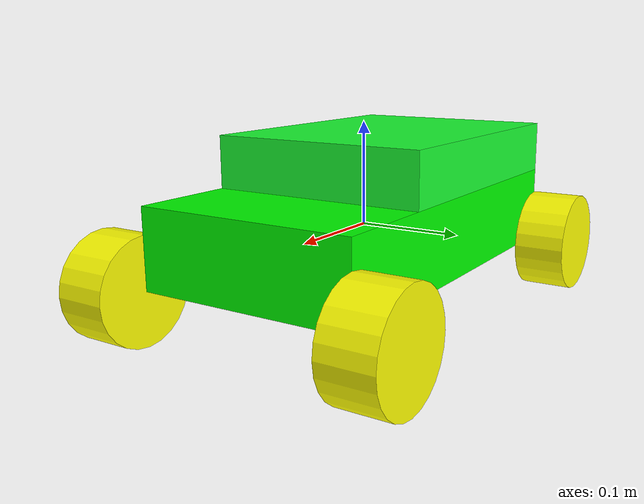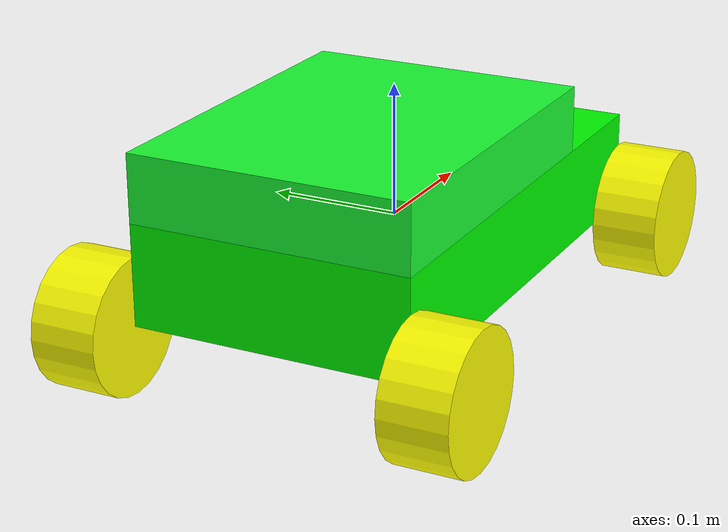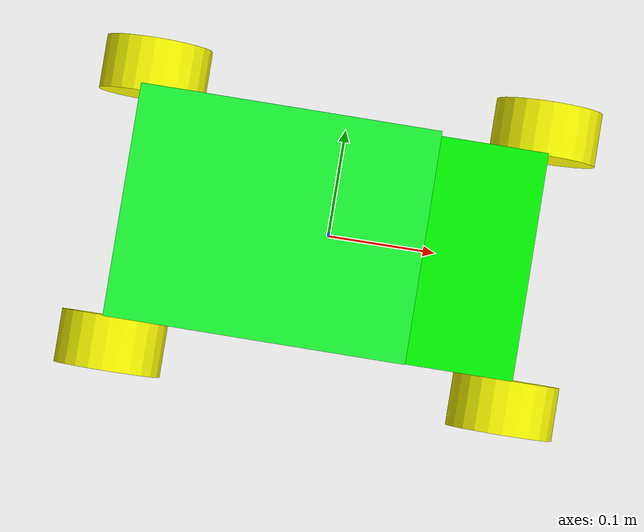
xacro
<?xml version="1.0"?>
<robot name="car" xmlns:xacro="http://ros.org/wiki/xacro">

  <!-- ===== Global Parameters ===== -->
  <xacro:property name="pi" value="3.1415926535897931" />
  <xacro:property name="car_length" value="0.3762" />             <!-- x axis  -->
  <xacro:property name="car_width" value="0.2124" />              <!-- y axis  -->
  <xacro:property name="car_height" value="0.0762" />              <!-- z axis  -->
  <xacro:property name="car_mass" value="0.7" />
  <xacro:property name="wheel_radius" value="0.0508" />
  <xacro:property name="wheel_length" value="0.0508" />
  <xacro:property name="wheel_mass" value="0.1" />

  <xacro:property name="capota_car_length" value="0.2746" />      <!-- x axis  -->
  <xacro:property name="capota_car_width" value="0.2124" />       <!-- y axis  -->
  <xacro:property name="capota_car_height" value="0.0508" />      <!-- z axis  -->
  <xacro:property name="capota_car_mass" value="0.3" />

  <!-- Materials -->
  <material name="green">
    <color rgba="0 1 0 1" />
  </material>
  <material name="light_green">
    <color rgba="0.1 1 0.2 1" />
  </material>
  <material name="yellow">
    <color rgba="1 1 0 1" />
  </material>

  <gazebo>
    <plugin name="gazebo_ros_control" filename="libgazebo_ros_control.so">
      <robotNamespace>/car</robotNamespace>
      <robotSimType>gazebo_ros_control/DefaultRobotHWSim</robotSimType>
    </plugin>
  </gazebo>

  <!-- Base Link -->
  <link name="dummy"> </link>
  <joint name="dummy_joint" type="fixed">
    <parent link="dummy" />
    <child link="base_link" />
  </joint>
  <link name="base_link">
    <visual>
      <geometry>
        <box size="${car_length} ${car_width} ${car_height}" />
      </geometry>
      <material name="green" />
    </visual>
    <collision>
      <geometry>
        <box size="${car_length} ${car_width} ${car_height}" />
      </geometry>
    </collision>
    <inertial>
      <mass value="${car_mass}" />
      <inertia
        ixx="${(car_mass/12) * (car_width**2 + car_height**2)}"
        ixy="0"
        ixz="0"
        iyy="${(car_mass/12) * (car_length**2 + car_height**2)}"
        iyz="0"
        izz="${(car_mass/12) * (car_length**2 + car_width**2)}" />
    </inertial>
  </link>
  <!-- Gazebo friction parameters -->
  <gazebo reference="base_link">
    <mu1>0.2</mu1>
    <mu2>0.2</mu2>
  </gazebo>

  <!-- Roof -->
  <link name="capota">
    <visual>
      <geometry>
        <box size="${capota_car_length} ${capota_car_width} ${capota_car_height}" />
      </geometry>
      <material name="light_green" />
    </visual>
    <collision>
      <geometry>
        <box size="${capota_car_length} ${capota_car_width} ${capota_car_height}" />
      </geometry>
    </collision>
    <inertial>
      <mass value="${capota_car_mass}" />
      <inertia
        ixx="${(capota_car_mass/12) * (capota_car_width**2 + capota_car_height**2)}"
        ixy="0"
        ixz="0"
        iyy="${(capota_car_mass/12) * (capota_car_length**2 + capota_car_height**2)}"
        iyz="0"
        izz="${(capota_car_mass/12) * (capota_car_length**2 + capota_car_width**2)}" />
    </inertial>
  </link>
  <joint name="capota_joint" type="fixed">
    <parent link="base_link" />
    <child link="capota" />
    <origin xyz="${capota_car_length/2-car_length/2} 0 ${car_height/2+capota_car_height/2}"
      rpy="0 0 0" />
  </joint>

  <!-- Wheels -->
  <!-- Front Left Wheel -->
<link name="front_left_steer_link">
  <inertial>
    <mass value="0.1"/>
    <inertia ixx="0.001" ixy="0.0" ixz="0.0" iyy="0.001" iyz="0.0" izz="0.001"/>
  </inertial>
</link>

<link name="front_left_wheel_link">
  <visual>
    <geometry>
      <cylinder radius="${wheel_radius}" length="${wheel_length}"/>
    </geometry>
    <material name="yellow"/>
  </visual>
  <collision>
    <geometry>
      <cylinder radius="${wheel_radius}" length="${wheel_length}"/>
    </geometry>
  </collision>
  <inertial>
    <mass value="${wheel_mass}"/>
    <inertia
      ixx="${(wheel_mass/12) * (3*wheel_radius**2 + wheel_length**2)}"
      ixy="0" ixz="0"
      iyy="${(wheel_mass/12) * (3*wheel_radius**2 + wheel_length**2)}"
      iyz="0"
      izz="${(wheel_mass/2) * wheel_radius**2}"/>
  </inertial>
</link>

<!-- Steering joint (connects base to steer link) -->
<joint name="steer_front_left_joint" type="revolute">
  <parent link="base_link"/>
  <child link="front_left_steer_link"/>
  <origin xyz="${car_length/2} ${car_width/2} ${-car_height/2}"/>
  <axis xyz="0 0 1"/>
  <limit lower="-0.785" upper="0.785" effort="10.0" velocity="10.0"/>
</joint>

<!-- Wheel joint (connects steer link to wheel, provides rotation) -->
<joint name="front_left_wheel_joint" type="continuous">
  <parent link="front_left_steer_link"/>
  <child link="front_left_wheel_link"/>
  <origin xyz="0 ${wheel_length/2} 0" rpy="${pi/2} 0 0"/>
  <axis xyz="0 0 1"/>
</joint>

<!-- Front Right Wheel -->
<link name="front_right_steer_link">
  <inertial>
    <mass value="0.1"/>
    <inertia ixx="0.001" ixy="0.0" ixz="0.0" iyy="0.001" iyz="0.0" izz="0.001"/>
  </inertial>
</link>

<link name="front_right_wheel_link">
  <visual>
    <geometry>
      <cylinder radius="${wheel_radius}" length="${wheel_length}"/>
    </geometry>
    <material name="yellow"/>
  </visual>
  <collision>
    <geometry>
      <cylinder radius="${wheel_radius}" length="${wheel_length}"/>
    </geometry>
  </collision>
  <inertial>
    <mass value="${wheel_mass}"/>
    <inertia
      ixx="${(wheel_mass/12) * (3*wheel_radius**2 + wheel_length**2)}"
      ixy="0" ixz="0"
      iyy="${(wheel_mass/12) * (3*wheel_radius**2 + wheel_length**2)}"
      iyz="0"
      izz="${(wheel_mass/2) * wheel_radius**2}"/>
  </inertial>
</link>

<!-- Steering joint (connects base to steer link) -->
<joint name="steer_front_right_joint" type="revolute">
  <parent link="base_link"/>
  <child link="front_right_steer_link"/>
  <origin xyz="${car_length/2} ${-car_width/2} ${-car_height/2}"/>
  <axis xyz="0 0 1"/>
  <limit lower="-0.785" upper="0.785" effort="10.0" velocity="10.0"/>
</joint>

<!-- Wheel joint (connects steer link to wheel, provides rotation) -->
<joint name="front_right_wheel_joint" type="continuous">
  <parent link="front_right_steer_link"/>
  <child link="front_right_wheel_link"/>
  <origin xyz="0 ${-wheel_length/2} 0" rpy="${pi/2} 0 0"/>
  <axis xyz="0 0 1"/>
</joint>

  <!-- back_left_wheel -->
  <link name="back_left_wheel_link">
    <visual>
      <geometry>
        <cylinder radius="${wheel_radius}" length="${wheel_length}" />
      </geometry>
      <material name="yellow" />
    </visual>
    <collision>
      <geometry>
        <cylinder radius="${wheel_radius}" length="${wheel_length}" />
      </geometry>
    </collision>
    <inertial>
      <mass value="${wheel_mass}" />
      <inertia
        ixx="${(wheel_mass/12) * (3*wheel_radius**2 + wheel_length**2)}"
        ixy="0"
        ixz="0"
        iyy="${(wheel_mass/12) * (3*wheel_radius**2 + wheel_length**2)}"
        iyz="0"
        izz="${(wheel_mass/2) * wheel_radius**2}" />
    </inertial>
  </link>
  <joint name="back_left_wheel_joint" type="continuous">
    <parent link="base_link" />
    <child link="back_left_wheel_link" />
    <origin xyz="${-car_length/2} ${+car_width/2+wheel_length/2} ${-car_height/2}" rpy="${pi/2} 0 0" />
    <axis xyz="0 0 1" />
    <limit effort="10.0" velocity="10.0" />
  </joint>

  <!-- back_right_wheel -->
  <link name="back_right_wheel_link">
    <visual>
      <geometry>
        <cylinder radius="${wheel_radius}" length="${wheel_length}" />
      </geometry>
      <material name="yellow" />
    </visual>
    <collision>
      <geometry>
        <cylinder radius="${wheel_radius}" length="${wheel_length}" />
      </geometry>
    </collision>
    <inertial>
      <mass value="${wheel_mass}" />
      <inertia
        ixx="${(wheel_mass/12) * (3*wheel_radius**2 + wheel_length**2)}"
        ixy="0"
        ixz="0"
        iyy="${(wheel_mass/12) * (3*wheel_radius**2 + wheel_length**2)}"
        iyz="0"
        izz="${(wheel_mass/2) * wheel_radius**2}" />
    </inertial>
  </link>
  <joint name="back_right_wheel_joint" type="continuous">
    <parent link="base_link" />
    <child link="back_right_wheel_link" />
    <origin xyz="${-car_length/2} ${-car_width/2-wheel_length/2} ${-car_height/2}"
      rpy="${pi/2} 0 0" />
    <axis xyz="0 0 1" />
    <limit effort="10.0" velocity="10.0" />
  </joint>

  <transmission name="back_left_wheel_trans">
    <type>transmission_interface/SimpleTransmission</type>
    <joint name="back_left_wheel_joint">
      <hardwareInterface>hardware_interface/EffortJointInterface</hardwareInterface>
    </joint>
    <actuator name="back_left_wheel_motor">
      <hardwareInterface>hardware_interface/EffortJointInterface</hardwareInterface>
      <mechanicalReduction>1</mechanicalReduction>
    </actuator>
  </transmission>

  <transmission name="back_right_wheel_trans">
    <type>transmission_interface/SimpleTransmission</type>
    <joint name="back_right_wheel_joint">
      <hardwareInterface>hardware_interface/EffortJointInterface</hardwareInterface>
    </joint>
    <actuator name="back_right_wheel_motor">
      <hardwareInterface>hardware_interface/EffortJointInterface</hardwareInterface>
      <mechanicalReduction>1</mechanicalReduction>
    </actuator>
  </transmission>
  <transmission name="front_left_steer_trans">
    <type>transmission_interface/SimpleTransmission</type>
    <joint name="steer_front_left_joint">
      <hardwareInterface>hardware_interface/EffortJointInterface</hardwareInterface>
    </joint>
    <actuator name="front_left_steer_motor">
      <hardwareInterface>hardware_interface/EffortJointInterface</hardwareInterface>
      <mechanicalReduction>1</mechanicalReduction>
    </actuator>
  </transmission>

  <transmission name="front_right_steer_trans">
    <type>transmission_interface/SimpleTransmission</type>
    <joint name="steer_front_right_joint">
      <hardwareInterface>hardware_interface/EffortJointInterface</hardwareInterface>
    </joint>
    <actuator name="front_right_steer_motor">
      <hardwareInterface>hardware_interface/EffortJointInterface</hardwareInterface>
      <mechanicalReduction>1</mechanicalReduction>
    </actuator>
  </transmission>
  <gazebo reference="back_right_wheel_link">
    <mu1>5.0</mu1>
    <mu2>5.0</mu2>
  </gazebo>
  <gazebo reference="back_left_wheel_link">
    <mu1>5.0</mu1>
    <mu2>5.0</mu2>
  </gazebo>
  <gazebo reference="front_right_wheel_link">
    <mu1>5.0</mu1>
    <mu2>5.0</mu2>
  </gazebo>
  <gazebo reference="front_left_wheel_link">
    <mu1>5.0</mu1>
    <mu2>5.0</mu2>
  </gazebo>
</robot>
